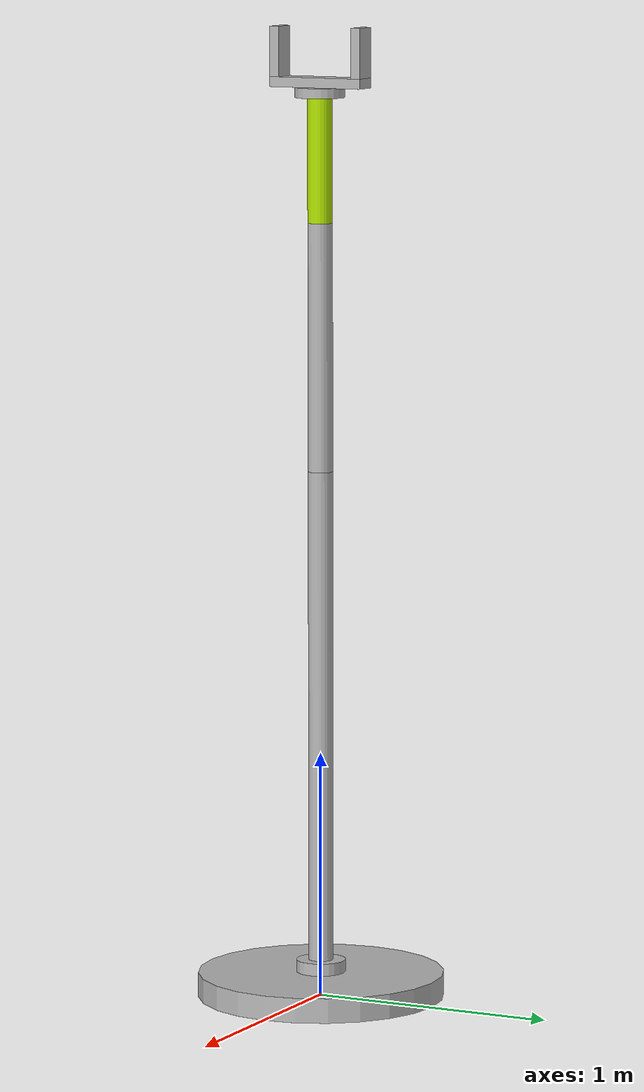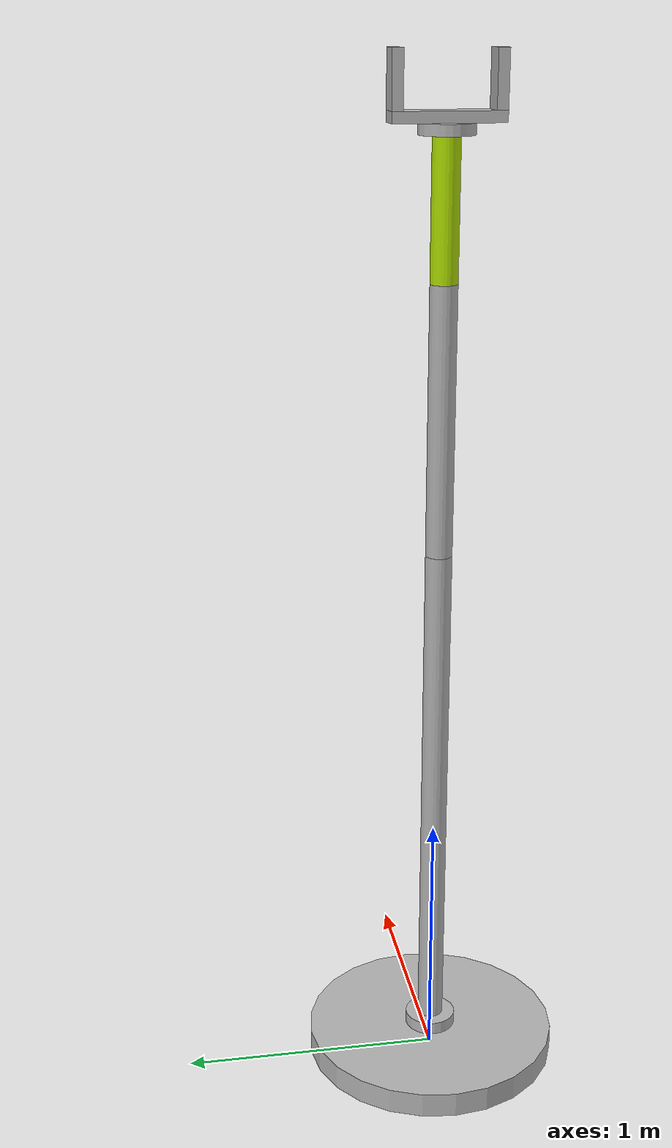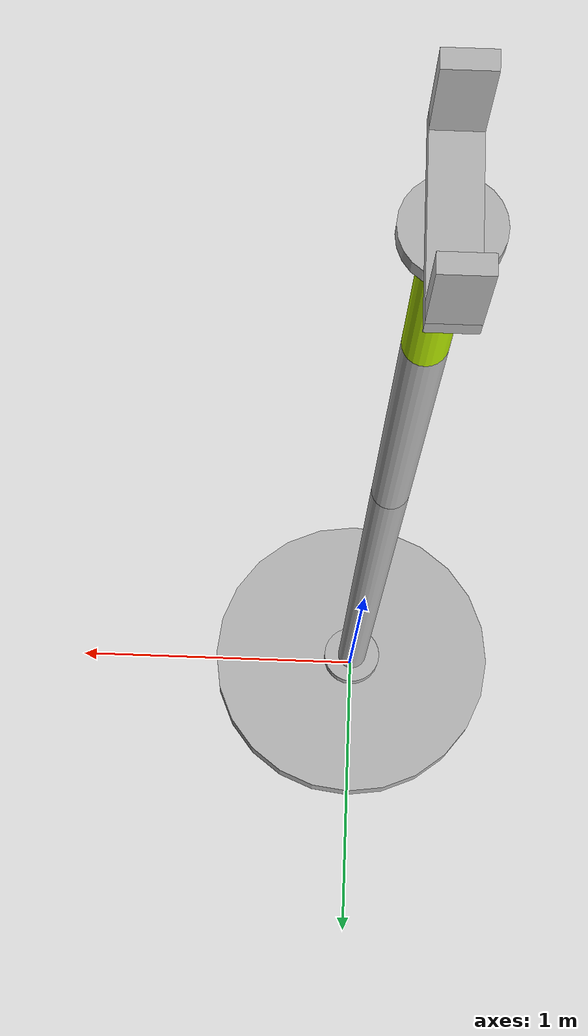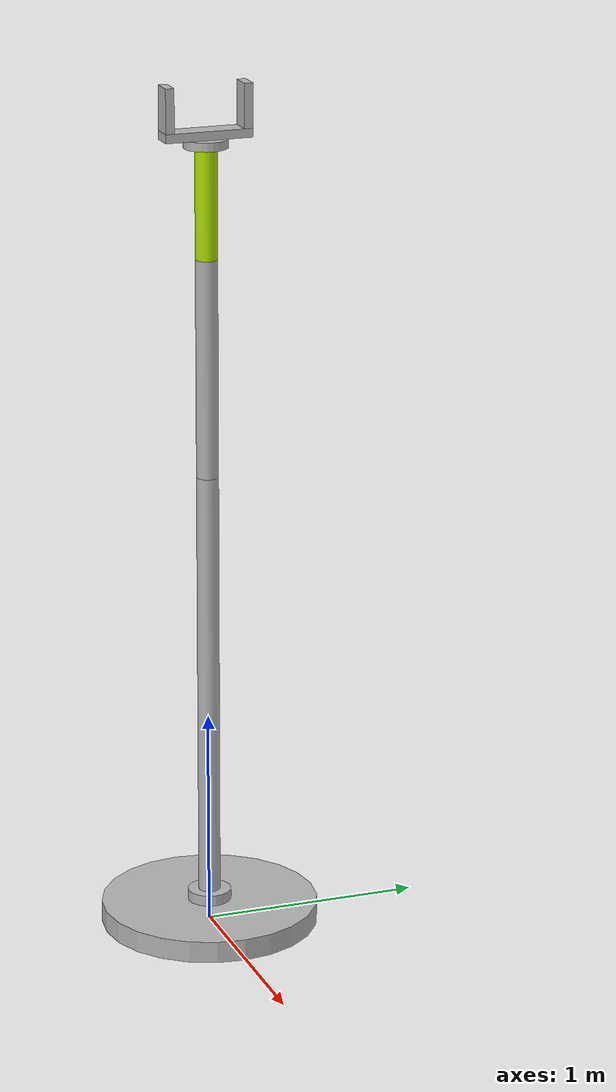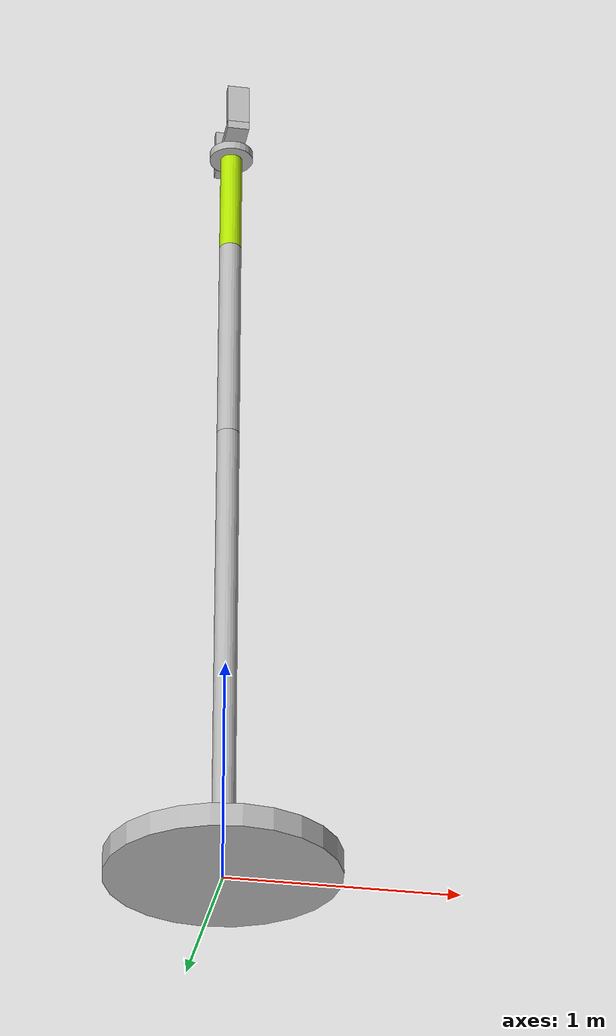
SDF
<?xml version='1.0'?>
<sdf version='1.6'>
    <model name='arm'>
        <link name='base'>
            <pose>0 0 0.05 0 0 0</pose>
            <collision name='collision'>
                <geometry>
                    <cylinder>
                        <radius>.5</radius>
                        <length>.1</length>
                    </cylinder>
                </geometry>
            </collision>
            <inertial>
                <mass>200</mass>
            </inertial>
            <visual name='visual'>
                <geometry>
                    <cylinder>
                        <radius>.5</radius>
                        <length>.1</length>
                    </cylinder>
                </geometry>
                <material>
                    <script>
                        <uri>model://materials/scripts</uri>
                        <uri>model://materials/textures</uri>
                        <name>RedArmMaterial/Diffuse</name>
                    </script>
                </material>
            </visual>
        </link>
        <joint name="base_arm1" type="revolute">
            <parent>base</parent>
            <child>arm1</child>
            <pose>0 0 -0.025 0 0</pose>
            <axis>
                <xyz>0 0 1</xyz>
                <dynamics>
                    <damping>1.0</damping>
                    <friction>0.5</friction>
                </dynamics>
                <limit>
                    <effort>100</effort>
                    <velocity>1.0</velocity>
                </limit>
            </axis>
        </joint>
        <link name='arm1'>
            <pose>0 0 0.125 0 0 0</pose>
            <inertial>
                <mass>.01</mass>
            </inertial>
            <collision name='collision'>
                <geometry>
                    <cylinder>
                        <radius>.1</radius>
                        <length>.05</length>
                    </cylinder>
                </geometry>
            </collision>

            <visual name='visual'>
                <geometry>
                    <cylinder>
                        <radius>.1</radius>
                        <length>.05</length>
                    </cylinder>
                </geometry>
            </visual>
        </link>
        <joint name="arm1_arm2" type="revolute">
            <parent>arm1</parent>
            <child>arm2</child>
            <pose>0 0 -1 0 0 0</pose>
            <axis>
                <xyz>1 0 0</xyz>
                <limit>
                    <effort>100</effort>
                    <velocity>1.0</velocity>
                </limit>
                <dynamics>
                    <damping>1.0</damping>
                    <friction>0.5</friction>
                </dynamics>
            </axis>
        </joint>
        <link name='arm2'>
            <pose>0 0 1.15 0 0 0</pose>
            <inertial>
                <mass>.5</mass>
            </inertial>
            <collision name='collision'>
                <geometry>
                    <cylinder>
                        <radius>.05</radius>
                        <length>2</length>
                    </cylinder>
                </geometry>
            </collision>

            <visual name='visual'>
                <geometry>
                    <cylinder>
                        <radius>.05</radius>
                        <length>2</length>
                    </cylinder>
                </geometry>
                <material>
                    <script>
                        <uri>model://materials/scripts</uri>
                        <uri>model://materials/textures</uri>
                        <name>ArmMaterial/Diffuse</name>
                    </script>
                </material>
            </visual>
        </link>
        <joint name="arm2_arm3" type="revolute">
            <parent>arm2</parent>
            <child>arm3</child>
            <pose>0 0 -0.5 0 0 0</pose>
            <axis>
                <xyz>1 0 0</xyz>
                <dynamics>
                    <damping>1.0</damping>
                    <friction>0.5</friction>
                </dynamics>
                <limit>
                    <effort>100</effort>
                    <velocity>1.0</velocity>
                </limit>
            </axis>
        </joint>
        <link name='arm3'>
            <pose>0 0 2.65 0 0 0</pose>
            <inertial>
                <mass>.25</mass>
            </inertial>
            <collision name='collision'>
                <geometry>
                    <cylinder>
                        <radius>.05</radius>
                        <length>1</length>
                    </cylinder>
                </geometry>
            </collision>

            <visual name='visual'>
                <geometry>
                    <cylinder>
                        <radius>.05</radius>
                        <length>1</length>
                    </cylinder>
                </geometry>

                <material>
                    <script>
                        <uri>model://materials/scripts</uri>
                        <uri>model://materials/textures</uri>
                        <name>RedArmMaterial/Diffuse</name>
                    </script>
                </material>
            </visual>
        </link>
        <joint name="arm3_arm4" type="revolute">
            <parent>arm3</parent>
            <child>arm4</child>
            <pose>0 0 -0.25 0 0 0</pose>
            <axis>
                <xyz>1 0 0</xyz>
                <dynamics>
                    <damping>1.0</damping>
                    <friction>0.5</friction>
                </dynamics>
                <limit>
                    <effort>100</effort>
                    <velocity>1.0</velocity>
                </limit>
            </axis>
        </joint>
        <link name='arm4'>
            <pose>0 0 3.4 0 0 0</pose>
            <inertial>
                <mass>.125</mass>
            </inertial>
            <collision name='collision'>
                <geometry>
                    <cylinder>
                        <radius>.05</radius>
                        <length>.5</length>
                    </cylinder>
                </geometry>
            </collision>

            <visual name='visual'>
                <geometry>
                    <cylinder>
                        <radius>.05</radius>
                        <length>.5</length>
                    </cylinder>
                </geometry>
                <material>
                    <ambient>0.5 0.75 0 1</ambient>
                    <diffuse>0.7 0.9 0 1</diffuse>
                    <specular>0.2 0.2 0.2 64</specular>
                    <emissive>0.1 0 0.1 1</emissive>
                    <script>
                        <uri>model://materials/scripts</uri>
                        <uri>model://materials/textures</uri>
                        <name>ArmMaterial/Diffuse</name>
                    </script>
                </material>
            </visual>
        </link>

        <joint name="arm4_arm5" type="revolute">
            <parent>arm4</parent>
            <child>arm5</child>
            <pose>0 0 -0.02 0 0 0</pose>
            <axis>
                <xyz>0 0 1</xyz>
                <dynamics>
                    <damping>1.0</damping>
                    <friction>0.5</friction>
                </dynamics>
                <limit>
                    <effort>100</effort>
                    <velocity>1.0</velocity>
                </limit>
            </axis>
        </joint>
        <link name='arm5'>
            <pose>0 0 3.67 0 0 0</pose>
            <inertial>
                <mass>.01</mass>
            </inertial>
            <collision name='collision'>
                <geometry>
                    <cylinder>
                        <radius>.1</radius>
                        <length>.04</length>
                    </cylinder>
                </geometry>
            </collision>

            <visual name='visual'>
                <geometry>
                    <cylinder>
                        <radius>.1</radius>
                        <length>.04</length>
                    </cylinder>
                </geometry>
            </visual>
        </link>
        <joint name="arm5_palm" type="revolute">
            <parent>arm5</parent>
            <child>palm</child>
            <pose>0 0 -0.02 0 0 0</pose>
            <axis>
                <dynamics>
                    <damping>1.0</damping>
                    <friction>0.5</friction>
                </dynamics>
                <limit>
                    <effort>100</effort>
                    <velocity>1.0</velocity>
                    <lower>-0.4</lower>
                    <upper>0.4</upper>
                </limit>
                <xyz>1 0 0</xyz>
            </axis>
        </joint>
        <link name="palm">
            <inertial>
                <mass>.01</mass>
            </inertial>
            <pose>0.0 0.0 3.71 0 0 0</pose>
            <collision name="collision">
                <geometry>
                    <box>
                        <size>0.1 0.4 0.04</size>
                    </box>
                </geometry>sudo apt install obs-studio
            </collision>
            <visual name="visual">
                <geometry>
                    <box>
                        <size>0.1 0.4 0.04</size>
                    </box>
                </geometry>
                <material>
                    <script>Gazebo/Red</script>
                </material>
            </visual>
        </link>
        <joint name="palm_left_finger" type="revolute">
            <pose>0 0 -0.10 0 0 0</pose>
            <parent>palm</parent>
            <child>left_finger</child>
            <axis>
                <xyz>1 0 0</xyz>
                <limit>
                    <effort>200</effort>
                    <velocity>2</velocity>
                </limit>
            </axis>
        </joint>
        <link name="left_finger">
            <pose>0 0.18 3.83 0 0 0</pose>
            <inertial>
                <mass>.01</mass>
            </inertial>
            <collision name="collision">
                <geometry>
                    <box>
                        <size>0.1 0.04 0.2</size>
                    </box>
                </geometry>
                <surface>
                    <friction>
                        <ode>
                            <mu>700</mu>
                            <mu2>700</mu2>
                        </ode>
                    </friction>
                    <contact>
                        <ode>
                            <kp>1e10</kp>
                            <kd>1e8</kd>
                            <min_depth>1</min_depth>
                        </ode>
                    </contact>
                </surface>
            </collision>
            <visual name="visual">
                <geometry>
                    <box>
                        <size>0.1 0.04 0.2</size>
                    </box>
                </geometry>
            </visual>
        </link>
        <joint name="palm_right_finger" type="revolute">
            <pose>0 0 -0.1 0 0 0</pose>
            <child>right_finger</child>
            <parent>palm</parent>
            <axis>
                <xyz>1 0 0</xyz>
                <limit>
                    <effort>200</effort>
                    <velocity>2</velocity>
                </limit>
            </axis>
        </joint>
        <link name="right_finger">
            <pose>0 -0.18 3.83 0 0 0</pose>
            <inertial>
                <mass>.01</mass>
            </inertial>
            <collision name="collision">
                <geometry>
                    <box>
                        <size>0.1 0.04 0.2</size>
                    </box>
                </geometry>
                <surface>
                    <friction>
                        <ode>
                            <mu>700</mu>
                            <mu2>700</mu2>
                        </ode>
                    </friction>
                    <contact>
                        <ode>
                            <kp>1e10</kp>
                            <kd>1e8</kd>
                            <min_depth>1</min_depth>
                        </ode>
                    </contact>
                </surface>
            </collision>
            <visual name="visual">
                <geometry>
                    <box>
                        <size>0.1 0.04 0.2</size>
                    </box>
                </geometry>
                <material>
                    <script>Gazebo/Green</script>
                </material>
            </visual>
        </link>
        <plugin name="publisher" filename="libPublisher.so"/>
        <plugin name="subscriber" filename="libRosSubscriber.so"/>
    </model>
</sdf>
